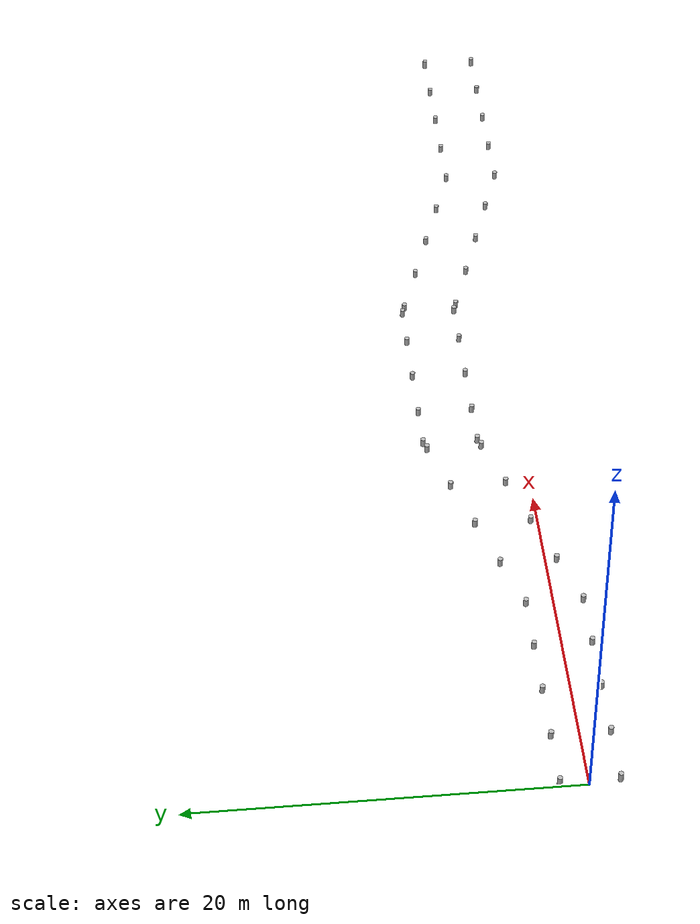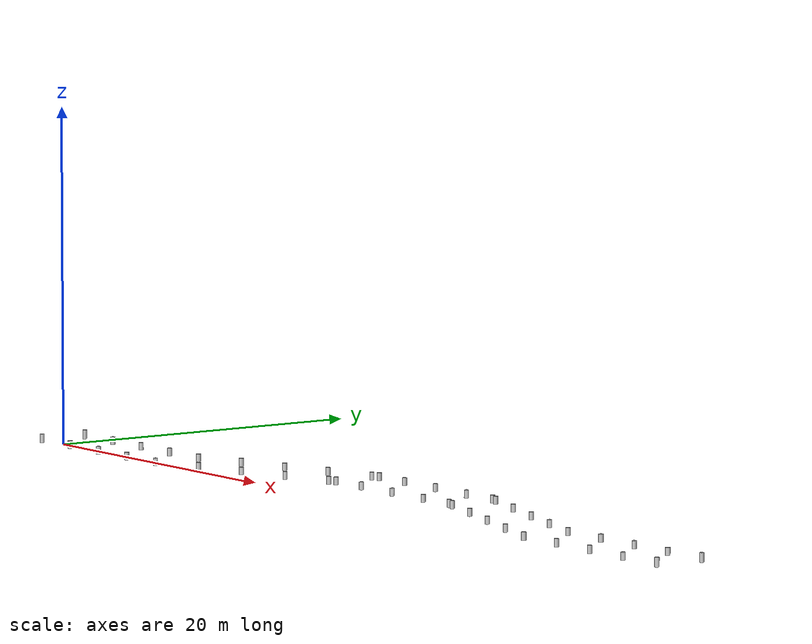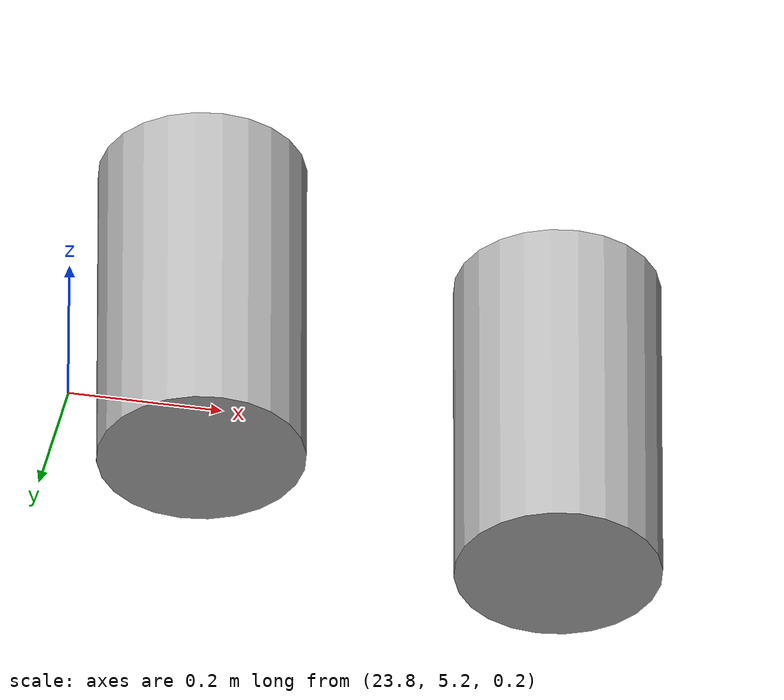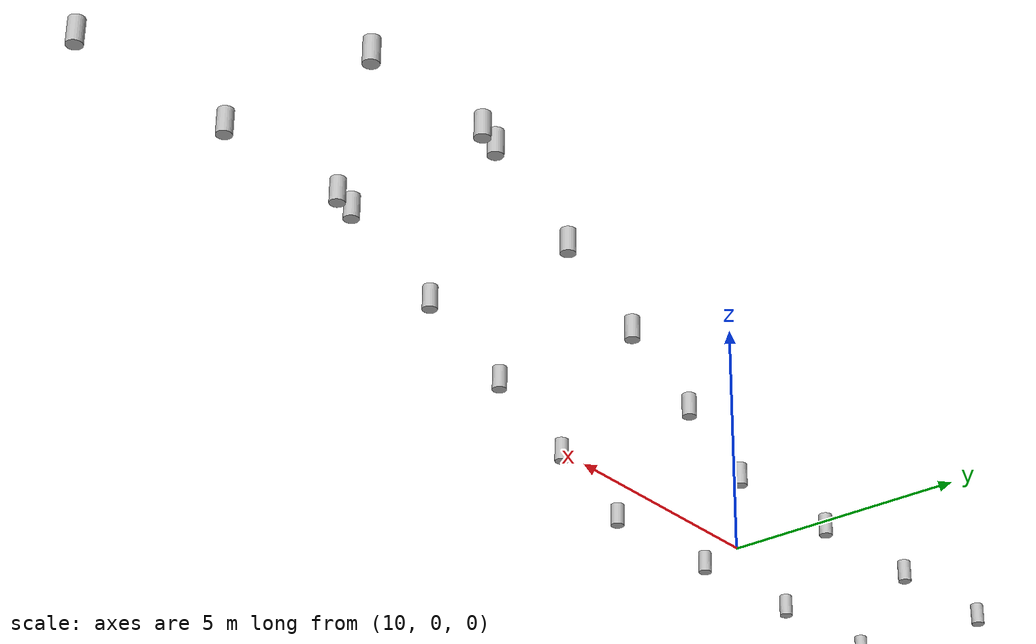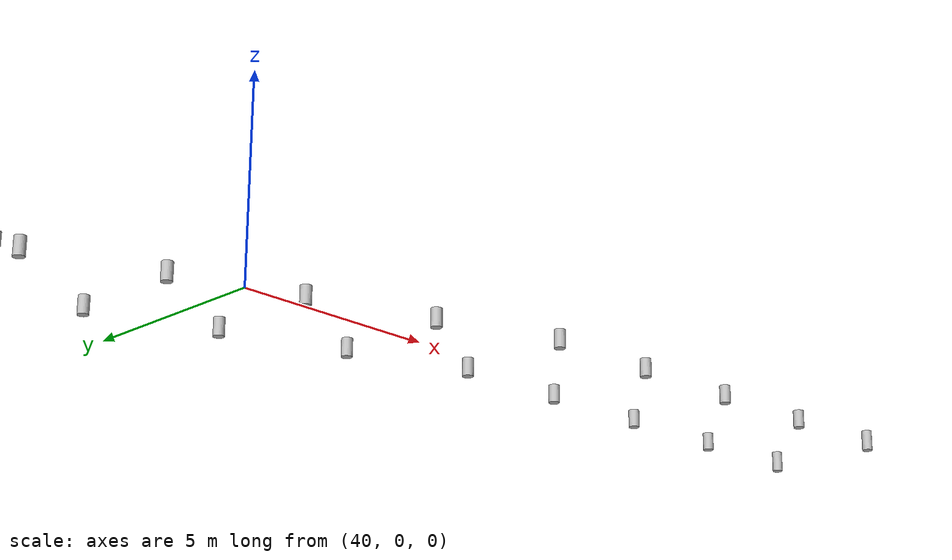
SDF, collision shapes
<?xml version='1.0'?>
<sdf version='1.6'>
  <model name='track'>

    <include>
      <pose>3.0 1.5 0.225 0 0 0</pose>
      <uri>model://blue_cone</uri>
      <name>blue_cone_0</name>

      <covariance x="0.042413" y="0.042413" xy="0.0"/>

    </include>

    <include>
      <pose>6.0 1.5 0.225 0 0 0</pose>
      <uri>model://blue_cone</uri>
      <name>blue_cone_1</name>

      <covariance x="0.042413" y="0.042413" xy="0.0"/>

    </include>

    <include>
      <pose>9.0 1.5 0.225 0 0 0</pose>
      <uri>model://blue_cone</uri>
      <name>blue_cone_2</name>

      <covariance x="0.042413" y="0.042413" xy="0.0"/>

    </include>

    <include>
      <pose>12.0 1.5 0.225 0 0 0</pose>
      <uri>model://blue_cone</uri>
      <name>blue_cone_3</name>

      <covariance x="0.042413" y="0.042413" xy="0.0"/>

    </include>

    <include>
      <pose>15.0 2.46 0.225 0 0 0</pose>
      <uri>model://blue_cone</uri>
      <name>blue_cone_4</name>

      <covariance x="0.042413" y="0.042413" xy="0.0"/>

    </include>

    <include>
      <pose>18.0 3.42 0.225 0 0 0</pose>
      <uri>model://blue_cone</uri>
      <name>blue_cone_5</name>

      <covariance x="0.042413" y="0.042413" xy="0.0"/>

    </include>

    <include>
      <pose>21.0 4.38 0.225 0 0 0</pose>
      <uri>model://blue_cone</uri>
      <name>blue_cone_6</name>

      <covariance x="0.042413" y="0.042413" xy="0.0"/>

    </include>

    <include>
      <pose>24.0 5.34 0.225 0 0 0</pose>
      <uri>model://blue_cone</uri>
      <name>blue_cone_7</name>

      <covariance x="0.042413" y="0.042413" xy="0.0"/>

    </include>

    <include>
      <pose>24.5 5.5 0.225 0 0 0</pose>
      <uri>model://blue_cone</uri>
      <name>blue_cone_8</name>

      <covariance x="0.042413" y="0.042413" xy="0.0"/>

    </include>

    <include>
      <pose>27.0 5.5 0.225 0 0 0</pose>
      <uri>model://blue_cone</uri>
      <name>blue_cone_9</name>

      <covariance x="0.042413" y="0.042413" xy="0.0"/>

    </include>

    <include>
      <pose>30.0 5.5 0.225 0 0 0</pose>
      <uri>model://blue_cone</uri>
      <name>blue_cone_10</name>

      <covariance x="0.042413" y="0.042413" xy="0.0"/>

    </include>

    <include>
      <pose>33.0 5.5 0.225 0 0 0</pose>
      <uri>model://blue_cone</uri>
      <name>blue_cone_11</name>

      <covariance x="0.042413" y="0.042413" xy="0.0"/>

    </include>

    <include>
      <pose>35.5 5.5 0.225 0 0 0</pose>
      <uri>model://blue_cone</uri>
      <name>blue_cone_12</name>

      <covariance x="0.042413" y="0.042413" xy="0.0"/>

    </include>

    <include>
      <pose>36.0 5.34 0.225 0 0 0</pose>
      <uri>model://blue_cone</uri>
      <name>blue_cone_13</name>

      <covariance x="0.042413" y="0.042413" xy="0.0"/>

    </include>

    <include>
      <pose>39.0 4.38 0.225 0 0 0</pose>
      <uri>model://blue_cone</uri>
      <name>blue_cone_14</name>

      <covariance x="0.042413" y="0.042413" xy="0.0"/>

    </include>

    <include>
      <pose>42.0 3.42 0.225 0 0 0</pose>
      <uri>model://blue_cone</uri>
      <name>blue_cone_15</name>

      <covariance x="0.042413" y="0.042413" xy="0.0"/>

    </include>

    <include>
      <pose>45.0 2.46 0.225 0 0 0</pose>
      <uri>model://blue_cone</uri>
      <name>blue_cone_16</name>

      <covariance x="0.042413" y="0.042413" xy="0.0"/>

    </include>

    <include>
      <pose>48.0 1.5 0.225 0 0 0</pose>
      <uri>model://blue_cone</uri>
      <name>blue_cone_17</name>

      <covariance x="0.042413" y="0.042413" xy="0.0"/>

    </include>

    <include>
      <pose>51.0 1.5 0.225 0 0 0</pose>
      <uri>model://blue_cone</uri>
      <name>blue_cone_18</name>

      <covariance x="0.042413" y="0.042413" xy="0.0"/>

    </include>

    <include>
      <pose>54.0 1.5 0.225 0 0 0</pose>
      <uri>model://blue_cone</uri>
      <name>blue_cone_19</name>

      <covariance x="0.042413" y="0.042413" xy="0.0"/>

    </include>

    <include>
      <pose>57.0 1.5 0.225 0 0 0</pose>
      <uri>model://blue_cone</uri>
      <name>blue_cone_20</name>

      <covariance x="0.042413" y="0.042413" xy="0.0"/>

    </include>

    <include>
      <pose>3.0 -1.5 0.225 0 0 0</pose>
      <uri>model://yellow_cone</uri>
      <name>yellow_cone_21</name>

      <covariance x="0.042413" y="0.042413" xy="0.0"/>

    </include>

    <include>
      <pose>6.0 -1.5 0.225 0 0 0</pose>
      <uri>model://yellow_cone</uri>
      <name>yellow_cone_22</name>

      <covariance x="0.042413" y="0.042413" xy="0.0"/>

    </include>

    <include>
      <pose>9.0 -1.5 0.225 0 0 0</pose>
      <uri>model://yellow_cone</uri>
      <name>yellow_cone_23</name>

      <covariance x="0.042413" y="0.042413" xy="0.0"/>

    </include>

    <include>
      <pose>12.0 -1.5 0.225 0 0 0</pose>
      <uri>model://yellow_cone</uri>
      <name>yellow_cone_24</name>

      <covariance x="0.042413" y="0.042413" xy="0.0"/>

    </include>

    <include>
      <pose>15.0 -0.54 0.225 0 0 0</pose>
      <uri>model://yellow_cone</uri>
      <name>yellow_cone_25</name>

      <covariance x="0.042413" y="0.042413" xy="0.0"/>

    </include>

    <include>
      <pose>18.0 0.42 0.225 0 0 0</pose>
      <uri>model://yellow_cone</uri>
      <name>yellow_cone_26</name>

      <covariance x="0.042413" y="0.042413" xy="0.0"/>

    </include>

    <include>
      <pose>21.0 1.38 0.225 0 0 0</pose>
      <uri>model://yellow_cone</uri>
      <name>yellow_cone_27</name>

      <covariance x="0.042413" y="0.042413" xy="0.0"/>

    </include>

    <include>
      <pose>24.0 2.34 0.225 0 0 0</pose>
      <uri>model://yellow_cone</uri>
      <name>yellow_cone_28</name>

      <covariance x="0.042413" y="0.042413" xy="0.0"/>

    </include>

    <include>
      <pose>24.5 2.5 0.225 0 0 0</pose>
      <uri>model://yellow_cone</uri>
      <name>yellow_cone_29</name>

      <covariance x="0.042413" y="0.042413" xy="0.0"/>

    </include>

    <include>
      <pose>27.0 2.5 0.225 0 0 0</pose>
      <uri>model://yellow_cone</uri>
      <name>yellow_cone_30</name>

      <covariance x="0.042413" y="0.042413" xy="0.0"/>

    </include>

    <include>
      <pose>30.0 2.5 0.225 0 0 0</pose>
      <uri>model://yellow_cone</uri>
      <name>yellow_cone_31</name>

      <covariance x="0.042413" y="0.042413" xy="0.0"/>

    </include>

    <include>
      <pose>33.0 2.5 0.225 0 0 0</pose>
      <uri>model://yellow_cone</uri>
      <name>yellow_cone_32</name>

      <covariance x="0.042413" y="0.042413" xy="0.0"/>

    </include>

    <include>
      <pose>35.5 2.5 0.225 0 0 0</pose>
      <uri>model://yellow_cone</uri>
      <name>yellow_cone_33</name>

      <covariance x="0.042413" y="0.042413" xy="0.0"/>

    </include>

    <include>
      <pose>36.0 2.34 0.225 0 0 0</pose>
      <uri>model://yellow_cone</uri>
      <name>yellow_cone_34</name>

      <covariance x="0.042413" y="0.042413" xy="0.0"/>

    </include>

    <include>
      <pose>39.0 1.38 0.225 0 0 0</pose>
      <uri>model://yellow_cone</uri>
      <name>yellow_cone_35</name>

      <covariance x="0.042413" y="0.042413" xy="0.0"/>

    </include>

    <include>
      <pose>42.0 0.42 0.225 0 0 0</pose>
      <uri>model://yellow_cone</uri>
      <name>yellow_cone_36</name>

      <covariance x="0.042413" y="0.042413" xy="0.0"/>

    </include>

    <include>
      <pose>45.0 -0.54 0.225 0 0 0</pose>
      <uri>model://yellow_cone</uri>
      <name>yellow_cone_37</name>

      <covariance x="0.042413" y="0.042413" xy="0.0"/>

    </include>

    <include>
      <pose>48.0 -1.5 0.225 0 0 0</pose>
      <uri>model://yellow_cone</uri>
      <name>yellow_cone_38</name>

      <covariance x="0.042413" y="0.042413" xy="0.0"/>

    </include>

    <include>
      <pose>51.0 -1.5 0.225 0 0 0</pose>
      <uri>model://yellow_cone</uri>
      <name>yellow_cone_39</name>

      <covariance x="0.042413" y="0.042413" xy="0.0"/>

    </include>

    <include>
      <pose>54.0 -1.5 0.225 0 0 0</pose>
      <uri>model://yellow_cone</uri>
      <name>yellow_cone_40</name>

      <covariance x="0.042413" y="0.042413" xy="0.0"/>

    </include>

    <include>
      <pose>57.0 -1.5 0.225 0 0 0</pose>
      <uri>model://yellow_cone</uri>
      <name>yellow_cone_41</name>

      <covariance x="0.042413" y="0.042413" xy="0.0"/>

    </include>

    <include>
      <pose>0.0 1.5 0.225 0 0 0</pose>
      <uri>model://big_cone</uri>
      <name>big_cone_42</name>

      <covariance x="0.042413" y="0.042413" xy="0.0"/>

    </include>

    <include>
      <pose>0.0 -1.5 0.225 0 0 0</pose>
      <uri>model://big_cone</uri>
      <name>big_cone_43</name>

      <covariance x="0.042413" y="0.042413" xy="0.0"/>

    </include>

    <include>
      <pose>60.0 1.5 0.225 0 0 0</pose>
      <uri>model://big_cone</uri>
      <name>big_cone_44</name>

      <covariance x="0.042413" y="0.042413" xy="0.0"/>

    </include>

    <include>
      <pose>60.0 -1.5 0.225 0 0 0</pose>
      <uri>model://big_cone</uri>
      <name>big_cone_45</name>

      <covariance x="0.042413" y="0.042413" xy="0.0"/>

    </include>

    <static>0</static>
    <allow_auto_disable>1</allow_auto_disable>
  </model>
</sdf>

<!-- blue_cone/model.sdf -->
<sdf version='1.6'>
  <model name='blue_cone'>
    <link name='link'>
      <pose frame=''>0 0 0 0 0 0</pose>
      <inertial>
        <inertia>
          <ixx>0.0016</ixx>
          <ixy>0</ixy>
          <ixz>0</ixz>
          <iyy>0.0016</iyy>
          <iyz>0</iyz>
          <izz>0.0010</izz>
        </inertia>
        <mass>0.45</mass>
      </inertial>
      <visual name='visual'>
        <geometry>
          <mesh>
            <uri>file://cone_blue.dae</uri>
            <scale>1.197896 1.205467 1.483153</scale>
          </mesh>
        </geometry>
        <cast_shadows>1</cast_shadows>
      </visual>
      <collision name='collision'>
        <max_contacts>3</max_contacts>
        <pose>0 0 0.225 0 0 0</pose>
        <geometry>
          <cylinder>
            <radius>0.135</radius>
            <length>0.45</length>
          </cylinder>
        </geometry>
      </collision>
    </link>
  </model>
</sdf>

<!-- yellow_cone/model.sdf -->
<sdf version='1.6'>
  <model name='yellow_cone'>
    <link name='link'>
      <pose frame=''>0 0 0 0 0 0</pose>
      <inertial>
        <inertia>
          <ixx>0.0016</ixx>
          <ixy>0</ixy>
          <ixz>0</ixz>
          <iyy>0.0016</iyy>
          <iyz>0</iyz>
          <izz>0.0010</izz>
        </inertia>
        <mass>0.45</mass>
      </inertial>
      <visual name='visual'>
        <geometry>
          <mesh>
            <uri>file://cone_yellow.dae</uri>
            <scale>1.197896 1.205467 1.483153</scale>
          </mesh>
        </geometry>
        <cast_shadows>1</cast_shadows>
      </visual>
      <collision name='collision'>
        <max_contacts>3</max_contacts>
        <pose>0 0 0.225 0 0 0</pose>
        <geometry>
          <cylinder>
            <radius>0.135</radius>
            <length>0.45</length>
          </cylinder>
        </geometry>
      </collision>
    </link>
  </model>
</sdf>

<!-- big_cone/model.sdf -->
<sdf version='1.6'>
  <model name='big_cone'>
    <link name='link'>
      <pose frame=''>0 0 0 0 0 0</pose>
      <inertial>
        <inertia>
          <ixx>0.0016</ixx>
          <ixy>0</ixy>
          <ixz>0</ixz>
          <iyy>0.0016</iyy>
          <iyz>0</iyz>
          <izz>0.0010</izz>
        </inertia>
        <mass>0.45</mass>
      </inertial>
      <visual name='visual'>
        <geometry>
          <mesh>
            <uri>file://cone_big.dae</uri>
          </mesh>
        </geometry>
        <cast_shadows>1</cast_shadows>
      </visual>
      <collision name='collision'>
        <max_contacts>3</max_contacts>
        <pose>0 0 0.265 0 0 0</pose>
        <geometry>
          <cylinder>
            <radius>0.131</radius>
            <length>0.5255</length>
          </cylinder>
        </geometry>
      </collision>
    </link>
  </model>
</sdf>
